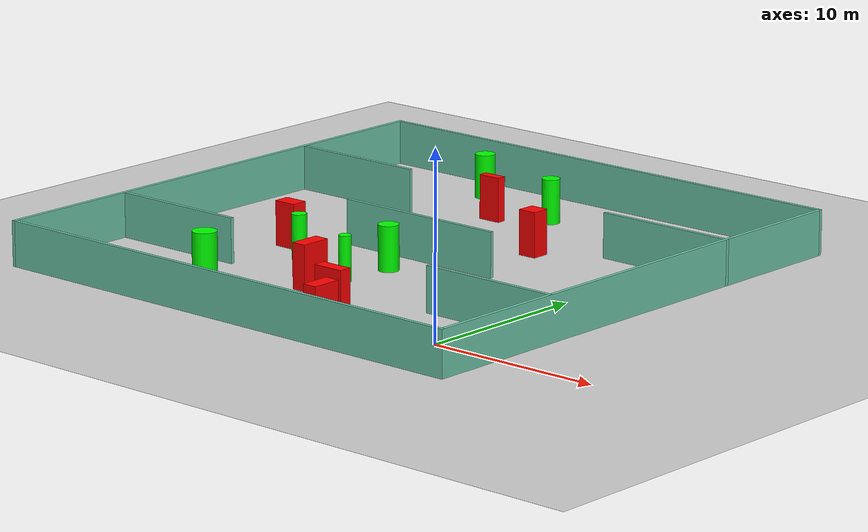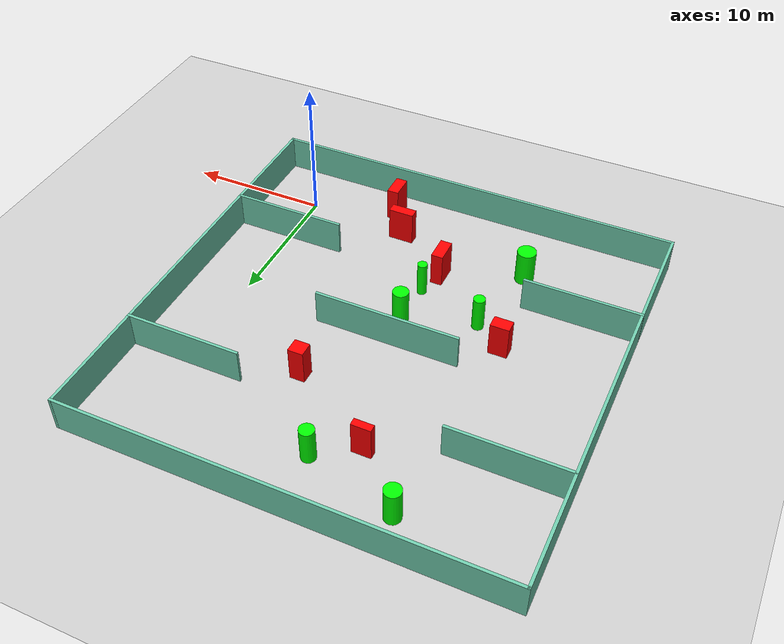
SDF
<sdf version="1.7">
 <world name="default">
  <light name="sun" type="directional">
   <pose>0 0 10 0 -0 0</pose>
   <diffuse>0.8 0.8 0.8 1</diffuse>
   <specular>0.2 0.2 0.2 1</specular>
   <attenuation>
    <range>1000</range>
    <constant>0.9</constant>
    <linear>0.01</linear>
    <quadratic>0.001</quadratic>
   </attenuation>
   <direction>-0.5 0.1 -0.9</direction>
   <spot><inner_angle>0</inner_angle><outer_angle>0</outer_angle><falloff>0</falloff></spot>
  </light>
  <model name="ground_plane">
   <static>1</static>
   <link name="link">
    <collision name="collision">
     <geometry><plane><normal>0 0 1</normal><size>100 100</size></plane></geometry>
     <surface>
      <contact><collide_bitmask>65535</collide_bitmask></contact>
      <friction><ode><mu>100</mu><mu2>50</mu2></ode></friction>
     </surface>
    </collision>
    <visual name="visual">
     <cast_shadows>0</cast_shadows>
     <geometry><plane><normal>0 0 1</normal><size>100 100</size></plane></geometry>
     <material>
      <script><uri>file://media/materials/scripts/gazebo.material</uri><name>Gazebo/Grey</name></script>
     </material>
    </visual>
   </link>
  </model>
  <gravity>0 0 -9.8</gravity>
  <magnetic_field>6e-06 2.3e-05 -4.2e-05</magnetic_field>
  <atmosphere type="adiabatic"/>
  <physics type="ode">
   <max_step_size>0.001</max_step_size>
   <real_time_factor>1</real_time_factor>
   <real_time_update_rate>1000</real_time_update_rate>
  </physics>
  <scene><ambient>0.4 0.4 0.4 1</ambient><background>0.7 0.7 0.7 1</background><shadows>1</shadows></scene>
  <spherical_coordinates>
   <surface_model>EARTH_WGS84</surface_model>
   <latitude_deg>0</latitude_deg>
   <longitude_deg>0</longitude_deg>
   <elevation>0</elevation>
   <heading_deg>0</heading_deg>
  </spherical_coordinates>
  <model name="my_base_walls">
   <link name="Wall_10">
    <collision name="Wall_10_Collision">
     <geometry><box><size>8.2 0.2 2.5</size></box></geometry>
     <pose>0 0 1.25 0 -0 0</pose>
    </collision>
    <visual name="Wall_10_Visual">
     <pose>0 0 1.25 0 -0 0</pose>
     <geometry><box><size>8.2 0.2 2.5</size></box></geometry>
     <material>
      <script><uri>file://media/materials/scripts/gazebo.material</uri><name>Gazebo/Grey</name></script>
      <ambient>0.435294 0.796078 0.67451 1</ambient>
     </material>
     <meta><layer>0</layer></meta>
    </visual>
    <pose>-11 -7 0 0 -0 0</pose>
   </link>
   <link name="Wall_12">
    <collision name="Wall_12_Collision">
     <geometry><box><size>8.2 0.2 2.5</size></box></geometry>
     <pose>0 0 1.25 0 -0 0</pose>
    </collision>
    <visual name="Wall_12_Visual">
     <pose>0 0 1.25 0 -0 0</pose>
     <geometry><box><size>8.2 0.2 2.5</size></box></geometry>
     <material>
      <script><uri>file://media/materials/scripts/gazebo.material</uri><name>Gazebo/Grey</name></script>
      <ambient>0.435294 0.796078 0.67451 1</ambient>
     </material>
     <meta><layer>0</layer></meta>
    </visual>
    <pose>-11 7 0 0 -0 0</pose>
   </link>
   <link name="Wall_14">
    <collision name="Wall_14_Collision">
     <geometry><box><size>8.2 0.2 2.5</size></box></geometry>
     <pose>0 0 1.25 0 -0 0</pose>
    </collision>
    <visual name="Wall_14_Visual">
     <pose>0 0 1.25 0 -0 0</pose>
     <geometry><box><size>8.2 0.2 2.5</size></box></geometry>
     <material>
      <script><uri>file://media/materials/scripts/gazebo.material</uri><name>Gazebo/Grey</name></script>
      <ambient>0.435294 0.796078 0.67451 1</ambient>
     </material>
     <meta><layer>0</layer></meta>
    </visual>
    <pose>11 7 0 0 -0 3.14159</pose>
   </link>
   <link name="Wall_16">
    <collision name="Wall_16_Collision">
     <geometry><box><size>10.2 0.2 2.5</size></box></geometry>
     <pose>0 0 1.25 0 -0 0</pose>
    </collision>
    <visual name="Wall_16_Visual">
     <pose>0 0 1.25 0 -0 0</pose>
     <geometry><box><size>10.2 0.2 2.5</size></box></geometry>
     <material>
      <script><uri>file://media/materials/scripts/gazebo.material</uri><name>Gazebo/Grey</name></script>
      <ambient>0.435294 0.796078 0.67451 1</ambient>
     </material>
     <meta><layer>0</layer></meta>
    </visual>
    <pose>0 0 0 0 -0 3.14159</pose>
   </link>
   <link name="Wall_2">
    <collision name="Wall_2_Collision">
     <geometry><box><size>30.2 0.2 2.5</size></box></geometry>
     <pose>0 0 1.25 0 -0 0</pose>
    </collision>
    <visual name="Wall_2_Visual">
     <pose>0 0 1.25 0 -0 0</pose>
     <geometry><box><size>30.2 0.2 2.5</size></box></geometry>
     <material>
      <script><uri>file://media/materials/scripts/gazebo.material</uri><name>Gazebo/Grey</name></script>
      <ambient>0.435294 0.796078 0.67451 1</ambient>
     </material>
     <meta><layer>0</layer></meta>
    </visual>
    <pose>0 -15 0 0 -0 3.14159</pose>
   </link>
   <link name="Wall_3">
    <collision name="Wall_3_Collision">
     <geometry><box><size>30.2 0.2 2.5</size></box></geometry>
     <pose>0 0 1.25 0 -0 0</pose>
    </collision>
    <visual name="Wall_3_Visual">
     <pose>0 0 1.25 0 -0 0</pose>
     <geometry><box><size>30.2 0.2 2.5</size></box></geometry>
     <material>
      <script><uri>file://media/materials/scripts/gazebo.material</uri><name>Gazebo/Grey</name></script>
      <ambient>0.435294 0.796078 0.67451 1</ambient>
     </material>
     <meta><layer>0</layer></meta>
    </visual>
    <pose>-15 0 0 0 -0 1.5708</pose>
   </link>
   <link name="Wall_4">
    <collision name="Wall_4_Collision">
     <geometry><box><size>30.2 0.2 2.5</size></box></geometry>
     <pose>0 0 1.25 0 -0 0</pose>
    </collision>
    <visual name="Wall_4_Visual">
     <pose>0 0 1.25 0 -0 0</pose>
     <geometry><box><size>30.2 0.2 2.5</size></box></geometry>
     <material>
      <script><uri>file://media/materials/scripts/gazebo.material</uri><name>Gazebo/Grey</name></script>
      <ambient>0.435294 0.796078 0.67451 1</ambient>
     </material>
     <meta><layer>0</layer></meta>
    </visual>
    <pose>0 15 0 0 -0 0</pose>
   </link>
   <link name="Wall_6">
    <collision name="Wall_6_Collision">
     <geometry><box><size>30.2 0.2 2.5</size></box></geometry>
     <pose>0 0 1.25 0 -0 0</pose>
    </collision>
    <visual name="Wall_6_Visual">
     <pose>0 0 1.25 0 -0 0</pose>
     <geometry><box><size>30.2 0.2 2.5</size></box></geometry>
     <material>
      <script><uri>file://media/materials/scripts/gazebo.material</uri><name>Gazebo/Grey</name></script>
      <ambient>0.435294 0.796078 0.67451 1</ambient>
     </material>
     <meta><layer>0</layer></meta>
    </visual>
    <pose>15 0 0 0 -0 1.5708</pose>
   </link>
   <link name="Wall_8">
    <collision name="Wall_8_Collision">
     <geometry><box><size>8.2 0.2 2.5</size></box></geometry>
     <pose>0 0 1.25 0 -0 0</pose>
    </collision>
    <visual name="Wall_8_Visual">
     <pose>0 0 1.25 0 -0 0</pose>
     <geometry><box><size>8.2 0.2 2.5</size></box></geometry>
     <material>
      <script><uri>file://media/materials/scripts/gazebo.material</uri><name>Gazebo/Grey</name></script>
      <ambient>0.435294 0.796078 0.67451 1</ambient>
     </material>
     <meta><layer>0</layer></meta>
    </visual>
    <pose>11 -7 0 0 -0 3.14159</pose>
   </link>
   <static>1</static>
   <pose>-11 11 0 0 -0 0</pose>
  </model>
  <model name="cylinder1">
   <static>1</static>
   <link name="link">
    <inertial>
     <mass>1</mass>
     <inertia><ixx>0.5</ixx><ixy>0</ixy><ixz>0</ixz><iyy>0.5</iyy><iyz>0</iyz><izz>1</izz></inertia>
    </inertial>
    <collision name="collision">
     <geometry><cylinder><radius>0.5629670397281641</radius><length>2.5</length></cylinder></geometry>
    </collision>
    <visual name="visual">
     <geometry><cylinder><radius>0.5629670397281641</radius><length>2.5</length></cylinder></geometry>
     <material>
      <ambient>0 1 0 1</ambient>
      <diffuse>0 1 0 1</diffuse>
      <specular>0.1 0.1 0.1 1</specular>
      <emissive>0 0 0 0</emissive>
     </material>
    </visual>
   </link>
   <pose>-10.954679079036191 8.577584035220452 1.25 0 0 0</pose>
  </model>
  <model name="cylinder2">
   <static>1</static>
   <link name="link">
    <inertial>
     <mass>1</mass>
     <inertia><ixx>0.5</ixx><ixy>0</ixy><ixz>0</ixz><iyy>0.5</iyy><iyz>0</iyz><izz>1</izz></inertia>
    </inertial>
    <collision name="collision">
     <geometry><cylinder><radius>0.34418883111604326</radius><length>2.5</length></cylinder></geometry>
    </collision>
    <visual name="visual">
     <geometry><cylinder><radius>0.34418883111604326</radius><length>2.5</length></cylinder></geometry>
     <material>
      <ambient>0 1 0 1</ambient>
      <diffuse>0 1 0 1</diffuse>
      <specular>0.1 0.1 0.1 1</specular>
      <emissive>0 0 0 0</emissive>
     </material>
    </visual>
   </link>
   <pose>-11.158757842434849 5.453508984108863 1.25 0 0 0</pose>
  </model>
  <model name="cylinder3">
   <static>1</static>
   <link name="link">
    <inertial>
     <mass>1</mass>
     <inertia><ixx>0.5</ixx><ixy>0</ixy><ixz>0</ixz><iyy>0.5</iyy><iyz>0</iyz><izz>1</izz></inertia>
    </inertial>
    <collision name="collision">
     <geometry><cylinder><radius>0.5669625002752892</radius><length>2.5</length></cylinder></geometry>
    </collision>
    <visual name="visual">
     <geometry><cylinder><radius>0.5669625002752892</radius><length>2.5</length></cylinder></geometry>
     <material>
      <ambient>0 1 0 1</ambient>
      <diffuse>0 1 0 1</diffuse>
      <specular>0.1 0.1 0.1 1</specular>
      <emissive>0 0 0 0</emissive>
     </material>
    </visual>
   </link>
   <pose>-17.203883249850985 23.407869161804822 1.25 0 0 0</pose>
  </model>
  <model name="cylinder4">
   <static>1</static>
   <link name="link">
    <inertial>
     <mass>1</mass>
     <inertia><ixx>0.5</ixx><ixy>0</ixy><ixz>0</ixz><iyy>0.5</iyy><iyz>0</iyz><izz>1</izz></inertia>
    </inertial>
    <collision name="collision">
     <geometry><cylinder><radius>0.5043702512539543</radius><length>2.5</length></cylinder></geometry>
    </collision>
    <visual name="visual">
     <geometry><cylinder><radius>0.5043702512539543</radius><length>2.5</length></cylinder></geometry>
     <material>
      <ambient>0 1 0 1</ambient>
      <diffuse>0 1 0 1</diffuse>
      <specular>0.1 0.1 0.1 1</specular>
      <emissive>0 0 0 0</emissive>
     </material>
    </visual>
   </link>
   <pose>-10.887111673350738 21.616015310845746 1.25 0 0 0</pose>
  </model>
  <model name="cylinder5">
   <static>1</static>
   <link name="link">
    <inertial>
     <mass>1</mass>
     <inertia><ixx>0.5</ixx><ixy>0</ixy><ixz>0</ixz><iyy>0.5</iyy><iyz>0</iyz><izz>1</izz></inertia>
    </inertial>
    <collision name="collision">
     <geometry><cylinder><radius>0.41546494068507295</radius><length>2.5</length></cylinder></geometry>
    </collision>
    <visual name="visual">
     <geometry><cylinder><radius>0.41546494068507295</radius><length>2.5</length></cylinder></geometry>
     <material>
      <ambient>0 1 0 1</ambient>
      <diffuse>0 1 0 1</diffuse>
      <specular>0.1 0.1 0.1 1</specular>
      <emissive>0 0 0 0</emissive>
     </material>
    </visual>
   </link>
   <pose>-15.923950857577456 7.033525009873266 1.25 0 0 0</pose>
  </model>
  <model name="cylinder6">
   <static>1</static>
   <link name="link">
    <inertial>
     <mass>1</mass>
     <inertia><ixx>0.5</ixx><ixy>0</ixy><ixz>0</ixz><iyy>0.5</iyy><iyz>0</iyz><izz>1</izz></inertia>
    </inertial>
    <collision name="collision">
     <geometry><cylinder><radius>0.6689625872115629</radius><length>2.5</length></cylinder></geometry>
    </collision>
    <visual name="visual">
     <geometry><cylinder><radius>0.6689625872115629</radius><length>2.5</length></cylinder></geometry>
     <material>
      <ambient>0 1 0 1</ambient>
      <diffuse>0 1 0 1</diffuse>
      <specular>0.1 0.1 0.1 1</specular>
      <emissive>0 0 0 0</emissive>
     </material>
    </visual>
   </link>
   <pose>-17.14864815621578 1.1908213891963602 1.25 0 0 0</pose>
  </model>
  <model name="box1">
   <static>1</static>
   <link name="link">
    <inertial>
     <mass>1</mass>
     <inertia><ixx>0.083</ixx><ixy>0</ixy><ixz>0</ixz><iyy>0.083</iyy><iyz>0</iyz><izz>0.083</izz></inertia>
    </inertial>
    <collision name="collision">
     <geometry><box><size>1.3454769390682177 0.5214249137140424 2.5</size></box></geometry>
    </collision>
    <visual name="visual">
     <geometry><box><size>1.3454769390682177 0.5214249137140424 2.5</size></box></geometry>
     <material>
      <ambient>1 0 0 1</ambient>
      <diffuse>1 0 0 1</diffuse>
      <specular>0.1 0.1 0.1 1</specular>
      <emissive>0 0 0 0</emissive>
     </material>
    </visual>
    <sensor name="my_contact" type="contact">
     <contact><collision>box_collision</collision><topic>__default_topic__</topic></contact>
    </sensor>
   </link>
   <pose>-13.663161443074888 19.934230354121233 1.25 0 0 0</pose>
  </model>
  <model name="box2">
   <static>1</static>
   <link name="link">
    <inertial>
     <mass>1</mass>
     <inertia><ixx>0.083</ixx><ixy>0</ixy><ixz>0</ixz><iyy>0.083</iyy><iyz>0</iyz><izz>0.083</izz></inertia>
    </inertial>
    <collision name="collision">
     <geometry><box><size>1.3257647594064812 0.8982959861009607 2.5</size></box></geometry>
    </collision>
    <visual name="visual">
     <geometry><box><size>1.3257647594064812 0.8982959861009607 2.5</size></box></geometry>
     <material>
      <ambient>1 0 0 1</ambient>
      <diffuse>1 0 0 1</diffuse>
      <specular>0.1 0.1 0.1 1</specular>
      <emissive>0 0 0 0</emissive>
     </material>
    </visual>
    <sensor name="my_contact" type="contact">
     <contact><collision>box_collision</collision><topic>__default_topic__</topic></contact>
    </sensor>
   </link>
   <pose>-18.067948104064502 8.603428364792627 1.25 0 0 0</pose>
  </model>
  <model name="box3">
   <static>1</static>
   <link name="link">
    <inertial>
     <mass>1</mass>
     <inertia><ixx>0.083</ixx><ixy>0</ixy><ixz>0</ixz><iyy>0.083</iyy><iyz>0</iyz><izz>0.083</izz></inertia>
    </inertial>
    <collision name="collision">
     <geometry><box><size>0.828508905663051 1.6631471194473388 2.5</size></box></geometry>
    </collision>
    <visual name="visual">
     <geometry><box><size>0.828508905663051 1.6631471194473388 2.5</size></box></geometry>
     <material>
      <ambient>1 0 0 1</ambient>
      <diffuse>1 0 0 1</diffuse>
      <specular>0.1 0.1 0.1 1</specular>
      <emissive>0 0 0 0</emissive>
     </material>
    </visual>
    <sensor name="my_contact" type="contact">
     <contact><collision>box_collision</collision><topic>__default_topic__</topic></contact>
    </sensor>
   </link>
   <pose>-5.928297457578385 -1.8980532037463491 1.25 0 0 0</pose>
  </model>
  <model name="box4">
   <static>1</static>
   <link name="link">
    <inertial>
     <mass>1</mass>
     <inertia><ixx>0.083</ixx><ixy>0</ixy><ixz>0</ixz><iyy>0.083</iyy><iyz>0</iyz><izz>0.083</izz></inertia>
    </inertial>
    <collision name="collision">
     <geometry><box><size>1.7989377166551428 0.7023264490841965 2.5</size></box></geometry>
    </collision>
    <visual name="visual">
     <geometry><box><size>1.7989377166551428 0.7023264490841965 2.5</size></box></geometry>
     <material>
      <ambient>1 0 0 1</ambient>
      <diffuse>1 0 0 1</diffuse>
      <specular>0.1 0.1 0.1 1</specular>
      <emissive>0 0 0 0</emissive>
     </material>
    </visual>
    <sensor name="my_contact" type="contact">
     <contact><collision>box_collision</collision><topic>__default_topic__</topic></contact>
    </sensor>
   </link>
   <pose>-7.511793146976165 0.6183780845679561 1.25 0 0 0</pose>
  </model>
  <model name="box5">
   <static>1</static>
   <link name="link">
    <inertial>
     <mass>1</mass>
     <inertia><ixx>0.083</ixx><ixy>0</ixy><ixz>0</ixz><iyy>0.083</iyy><iyz>0</iyz><izz>0.083</izz></inertia>
    </inertial>
    <collision name="collision">
     <geometry><box><size>1.0610472754329643 1.0195159427810678 2.5</size></box></geometry>
    </collision>
    <visual name="visual">
     <geometry><box><size>1.0610472754329643 1.0195159427810678 2.5</size></box></geometry>
     <material>
      <ambient>1 0 0 1</ambient>
      <diffuse>1 0 0 1</diffuse>
      <specular>0.1 0.1 0.1 1</specular>
      <emissive>0 0 0 0</emissive>
     </material>
    </visual>
    <sensor name="my_contact" type="contact">
     <contact><collision>box_collision</collision><topic>__default_topic__</topic></contact>
    </sensor>
   </link>
   <pose>-7.304736749763805 15.940196226694397 1.25 0 0 0</pose>
  </model>
  <model name="box6">
   <static>1</static>
   <link name="link">
    <inertial>
     <mass>1</mass>
     <inertia><ixx>0.083</ixx><ixy>0</ixy><ixz>0</ixz><iyy>0.083</iyy><iyz>0</iyz><izz>0.083</izz></inertia>
    </inertial>
    <collision name="collision">
     <geometry><box><size>0.8283355241046366 1.7328559910149304 2.5</size></box></geometry>
    </collision>
    <visual name="visual">
     <geometry><box><size>0.8283355241046366 1.7328559910149304 2.5</size></box></geometry>
     <material>
      <ambient>1 0 0 1</ambient>
      <diffuse>1 0 0 1</diffuse>
      <specular>0.1 0.1 0.1 1</specular>
      <emissive>0 0 0 0</emissive>
     </material>
    </visual>
    <sensor name="my_contact" type="contact">
     <contact><collision>box_collision</collision><topic>__default_topic__</topic></contact>
    </sensor>
   </link>
   <pose>-11.726937929496502 3.4335441712699257 1.25 0 0 0</pose>
  </model>
 </world>
</sdf>
